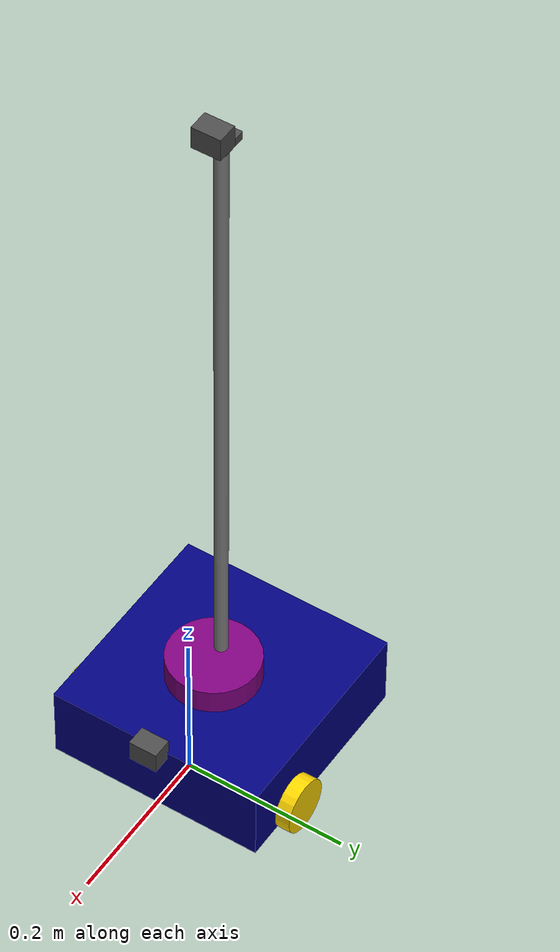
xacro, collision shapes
<?xml version="1.0" ?>
<robot name="turtlebot3_waffle_pi" xmlns:xacro="http://ros.org/wiki/xacro">
  <xacro:include filename="$(find robutler_description)/common_properties.xacro"/>
  <xacro:include filename="$(find robutler_description)/turtlebot3_waffle_pi.gazebo.xacro"/>

  <link name="base_footprint"/>

  <joint name="base_joint" type="fixed">
    <parent link="base_footprint"/>
    <child link="base_link" />
    <origin xyz="0 0 0.010" rpy="0 0 0"/>
  </joint>

  <link name="base_link">
    <visual>
      <origin xyz="-0.064 0 0.0" rpy="0 0 0"/>
      <geometry>
        <mesh filename="package://turtlebot3_description/meshes/bases/waffle_pi_base.stl" scale="0.001 0.001 0.001"/>
      </geometry>
      <material name="navy_blue"/>
    </visual>

    <collision>
      <origin xyz="-0.064 0 0.047" rpy="0 0 0"/>
      <geometry>
        <box size="0.266 0.266 0.094"/>
      </geometry>
    </collision>

    <inertial>
      <origin xyz="0 0 0" rpy="0 0 0"/>
      <mass value="1.3729096e+00"/>
      <inertia ixx="8.7002718e-03" ixy="-4.7576583e-05" ixz="1.1160499e-04"
               iyy="8.6195418e-03" iyz="-3.5422299e-06"
               izz="1.4612727e-02" />
    </inertial>
  </link>

  <joint name="wheel_left_joint" type="continuous">
    <parent link="base_link"/>
    <child link="wheel_left_link"/>
    <origin xyz="0.0 0.144 0.023" rpy="-1.57 0 0"/>
    <axis xyz="0 0 1"/>
  </joint>

  <link name="wheel_left_link">
    <visual>
      <origin xyz="0 0 0" rpy="1.57 0 0"/>
      <geometry>
        <mesh filename="package://turtlebot3_description/meshes/wheels/left_tire.stl" scale="0.001 0.001 0.001"/>
      </geometry>
      <material name="gold"/>
    </visual>

    <collision>
      <origin xyz="0 0 0" rpy="0 0 0"/>
      <geometry>
        <cylinder length="0.018" radius="0.033"/>
      </geometry>
    </collision>

    <inertial>
      <origin xyz="0 0 0" />
      <mass value="2.8498940e-02" />
      <inertia ixx="1.1175580e-05" ixy="-4.2369783e-11" ixz="-5.9381719e-09"
               iyy="1.1192413e-05" iyz="-1.4400107e-11"
               izz="2.0712558e-05" />
      </inertial>
  </link>

  <joint name="wheel_right_joint" type="continuous">
    <parent link="base_link"/>
    <child link="wheel_right_link"/>
    <origin xyz="0.0 -0.144 0.023" rpy="-1.57 0 0"/>
    <axis xyz="0 0 1"/>
  </joint>

  <link name="wheel_right_link">
    <visual>
      <origin xyz="0 0 0" rpy="1.57 0 0"/>
      <geometry>
        <mesh filename="package://turtlebot3_description/meshes/wheels/right_tire.stl" scale="0.001 0.001 0.001"/>
      </geometry>
      <material name="gold"/>
    </visual>

    <collision>
      <origin xyz="0 0 0" rpy="0 0 0"/>
      <geometry>
        <cylinder length="0.018" radius="0.033"/>
      </geometry>
    </collision>

    <inertial>
      <origin xyz="0 0 0" />
      <mass value="2.8498940e-02" />
      <inertia ixx="1.1175580e-05" ixy="-4.2369783e-11" ixz="-5.9381719e-09"
               iyy="1.1192413e-05" iyz="-1.4400107e-11"
               izz="2.0712558e-05" />
      </inertial>
  </link>

  <joint name="caster_back_right_joint" type="fixed">
    <parent link="base_link"/>
    <child link="caster_back_right_link"/>
    <origin xyz="-0.177 -0.064 -0.004" rpy="-1.57 0 0"/>
  </joint>

  <link name="caster_back_right_link">
    <collision>
      <origin xyz="0 0.001 0" rpy="0 0 0"/>
      <geometry>
        <box size="0.030 0.009 0.020"/>
      </geometry>
    </collision>

    <inertial>
      <origin xyz="0 0 0" />
      <mass value="0.005" />
      <inertia ixx="0.001" ixy="0.0" ixz="0.0"
               iyy="0.001" iyz="0.0"
               izz="0.001" />
    </inertial>
  </link>

  <joint name="caster_back_left_joint" type="fixed">
    <parent link="base_link"/>
    <child link="caster_back_left_link"/>
    <origin xyz="-0.177 0.064 -0.004" rpy="-1.57 0 0"/>
  </joint>

  <link name="caster_back_left_link">
    <collision>
      <origin xyz="0 0.001 0" rpy="0 0 0"/>
      <geometry>
        <box size="0.030 0.009 0.020"/>
      </geometry>
    </collision>

    <inertial>
      <origin xyz="0 0 0" />
      <mass value="0.005" />
      <inertia ixx="0.001" ixy="0.0" ixz="0.0"
               iyy="0.001" iyz="0.0"
               izz="0.001" />
    </inertial>
  </link>

  <joint name="imu_joint" type="fixed">
    <parent link="base_link"/>
    <child link="imu_link"/>
    <origin xyz="0.0 0 0.068" rpy="0 0 0"/>
  </joint>

  <link name="imu_link"/>

  <joint name="scan_joint" type="fixed">
    <parent link="base_link"/>
    <child link="base_scan"/>
    <origin xyz="-0.064 0 0.122" rpy="0 0 0"/>
  </joint>

  <link name="base_scan">
    <visual>
      <origin xyz="0 0 0.0" rpy="0 0 0"/>
      <geometry>
        <mesh filename="package://turtlebot3_description/meshes/sensors/lds.stl" scale="0.001 0.001 0.001"/>
      </geometry>
      <material name="purple"/>
    </visual>

    <collision>
      <origin xyz="0.015 0 -0.0065" rpy="0 0 0"/>
      <geometry>
        <cylinder length="0.0315" radius="0.055"/>
      </geometry>
    </collision>

    <inertial>
      <mass value="0.114" />
      <origin xyz="0 0 0" />
      <inertia ixx="0.001" ixy="0.0" ixz="0.0"
               iyy="0.001" iyz="0.0"
               izz="0.001" />
    </inertial>
  </link>

  <joint name="camera_joint" type="fixed">
    <origin xyz="0.073 -0.011 0.084" rpy="0 0 0"/>
    <parent link="base_link"/>
    <child link="camera_link"/>
  </joint>

  <link name="camera_link">
    <visual>
      <origin xyz="0.005 0.011 0.013" rpy="0 0 0"/>
      <geometry>
        <box size="0.025 0.035 0.027"/>
      </geometry>
      <material name="dark"/>
    </visual>
    <collision>
      <origin xyz="0.005 0.011 0.013" rpy="0 0 0"/>
      <geometry>
        <box size="0.025 0.035 0.027"/>
      </geometry>
    </collision>
    <inertial>
      <mass value="0.01"/>
      <inertia ixx="0.001" ixy="0" ixz="0" iyy="0.001" iyz="0" izz="0.001"/>
    </inertial>
  </link>

  <joint name="camera_rgb_joint" type="fixed">
    <origin xyz="0.003 0.011 0.009" rpy="0 0 0"/>
    <parent link="camera_link"/>
    <child link="camera_rgb_frame"/>
  </joint>
  <link name="camera_rgb_frame"/>

  <joint name="camera_rgb_optical_joint" type="fixed">
    <origin xyz="0 0 0" rpy="-1.57 0 -1.57"/>
    <parent link="camera_rgb_frame"/>
    <child link="camera_rgb_optical_frame"/>
  </joint>
  <link name="camera_rgb_optical_frame"/>

  <!-- Elevated Camera Assembly -->
  <joint name="camera_pole_joint" type="fixed">
    <parent link="base_link"/>
    <child link="camera_pole"/>
    <origin xyz="-0.064 0 0.094" rpy="0 0 0"/>
  </joint>

  <link name="camera_pole">
    <visual>
      <origin xyz="0 0 0.4" rpy="0 0 0"/>
      <geometry>
        <cylinder length="0.8" radius="0.008"/>
      </geometry>
      <material name="grey"/>
    </visual>
    <collision>
      <origin xyz="0 0 0.4" rpy="0 0 0"/>
      <geometry>
        <cylinder length="0.8" radius="0.008"/>
      </geometry>
    </collision>
    <inertial>
      <origin xyz="0 0 0.4" rpy="0 0 0"/>
      <mass value="0.2"/>
      <inertia ixx="0.002" ixy="0" ixz="0" iyy="0.002" iyz="0" izz="0.001"/>
    </inertial>
  </link>

  <joint name="elevated_camera_base_joint" type="fixed">
    <parent link="camera_pole"/>
    <child link="elevated_camera_base"/>
    <origin xyz="0 0 0.8" rpy="0 0 0"/>
  </joint>

  <link name="elevated_camera_base">
    <visual>
      <geometry>
        <box size="0.03 0.03 0.01"/>
      </geometry>
      <material name="dark"/>
    </visual>
    <collision>
      <geometry>
        <box size="0.03 0.03 0.01"/>
      </geometry>
    </collision>
    <inertial>
      <mass value="0.01"/>
      <inertia ixx="0.001" ixy="0" ixz="0" iyy="0.001" iyz="0" izz="0.001"/>
    </inertial>
  </link>

  <joint name="elevated_camera_joint" type="fixed">
    <parent link="elevated_camera_base"/>
    <child link="elevated_camera_link"/>
    <origin xyz="0.015 0 0.0135" rpy="0 0 0"/>
  </joint>

  <link name="elevated_camera_link">
    <visual>
      <geometry>
        <box size="0.025 0.035 0.027"/>
      </geometry>
      <material name="dark"/>
    </visual>
    <collision>
      <geometry>
        <box size="0.025 0.035 0.027"/>
      </geometry>
    </collision>
    <inertial>
      <mass value="0.01"/>
      <inertia ixx="0.001" ixy="0" ixz="0" iyy="0.001" iyz="0" izz="0.001"/>
    </inertial>
  </link>

  <joint name="elevated_camera_rgb_joint" type="fixed">
    <origin xyz="0.003 0.011 0.009" rpy="0 0 0"/>
    <parent link="elevated_camera_link"/>
    <child link="elevated_camera_rgb_frame"/>
  </joint>
  <link name="elevated_camera_rgb_frame"/>

  <joint name="elevated_camera_rgb_optical_joint" type="fixed">
    <origin xyz="0 0 0" rpy="-1.57 0 -1.57"/>
    <parent link="elevated_camera_rgb_frame"/>
    <child link="elevated_camera_rgb_optical_frame"/>
  </joint>
  <link name="elevated_camera_rgb_optical_frame"/>

</robot>

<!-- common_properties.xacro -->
<robot name="xacro_properties" xmlns:xacro="http://ros.org/wiki/xacro">

  <!-- Init colour -->
  <material name="black">
      <color rgba="0.0 0.0 0.0 1.0"/>
  </material>

  <material name="dark">
    <color rgba="0.3 0.3 0.3 1.0"/>
  </material>
  <material name="light_black">
    <color rgba="0.4 0.4 0.4 1.0"/>
  </material>

  <material name="blue">
    <color rgba="0.0 0.0 0.8 1.0"/>
  </material>

  <material name="green">
    <color rgba="0.0 0.8 0.0 1.0"/>
  </material>

  <material name="grey">
    <color rgba="0.5 0.5 0.5 1.0"/>
  </material>

  <material name="orange">
    <color rgba="${255/255} ${108/255} ${10/255} 1.0"/>
  </material>

  <material name="brown">
    <color rgba="${222/255} ${207/255} ${195/255} 1.0"/>
  </material>

  <material name="red">
    <color rgba="0.8 0.0 0.0 1.0"/>
  </material>

  <material name="white">
    <color rgba="1.0 1.0 1.0 1.0"/>
  </material>

  <material name="navy_blue">
    <color rgba="0.0 0.0 0.5 1.0"/>
  </material>

  <material name="gold">
    <color rgba="1.0 0.843 0.0 1.0"/>
  </material>

  <material name="purple">
    <color rgba="0.5 0.0 0.5 1.0"/>
  </material>
</robot>
